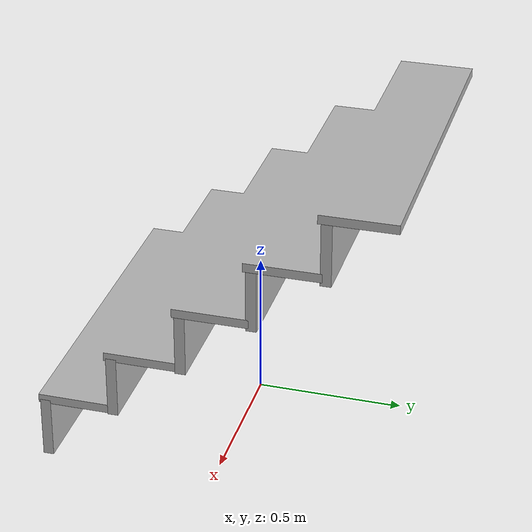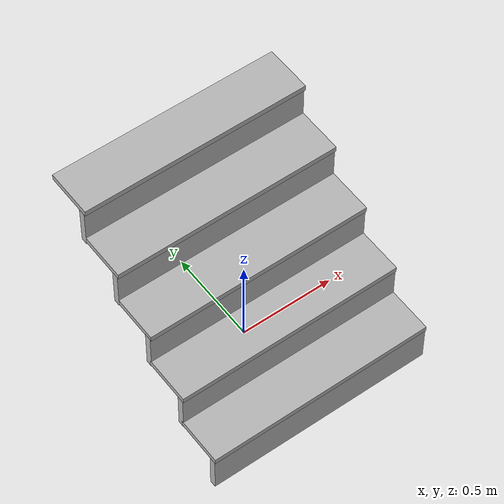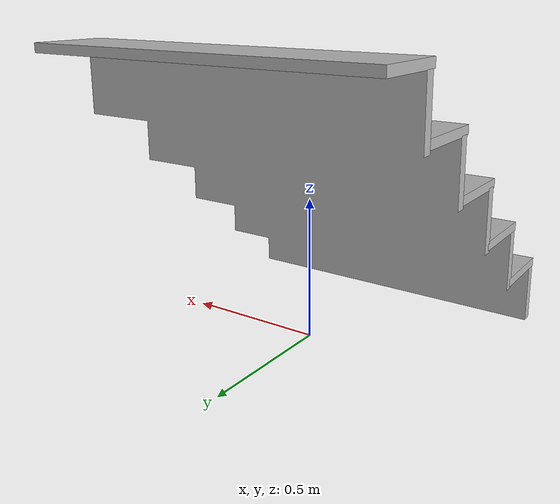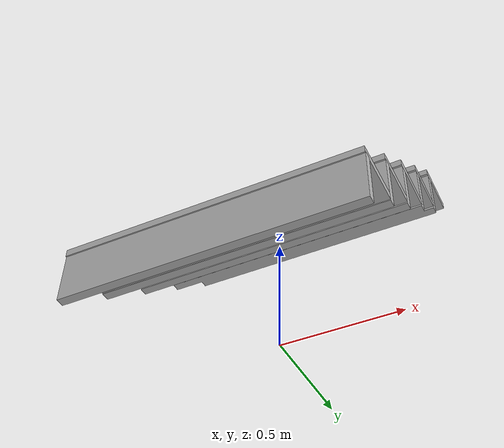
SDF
<?xml version="1.0" ?>
<sdf version="1.4">
  <model name="stairs">
    <static>true</static>

    <link name="tread_link">
      <pose>0 0 0 0 0 0</pose>
      <collision name="collision">
        <geometry>
          <mesh>
            <uri>model://stairs/stairs.dae</uri>
            <scale>1 1 1</scale>
          </mesh>
        </geometry>
      </collision>
      <visual name="visual">
        <geometry>
          <mesh>
            <uri>model://stairs/stairs.dae</uri>
            <scale>1 1 1</scale>
          </mesh>
        </geometry>
      </visual>
    </link>

    <link name="riser_link">
      <pose>0 0.620 0.500 1.5708 3.14159 0</pose>
      <collision name="collision">
        <geometry>
          <mesh>
            <uri>model://stairs/stairs.dae</uri>
            <scale>1 0.85 1.17</scale>
          </mesh>
        </geometry>
      </collision>
      <visual name="visual">
        <geometry>
          <mesh>
            <uri>model://stairs/stairs.dae</uri>
            <scale>1 0.85 1.17</scale>
          </mesh>
        </geometry>
      </visual>
    </link>

  </model>
</sdf>
